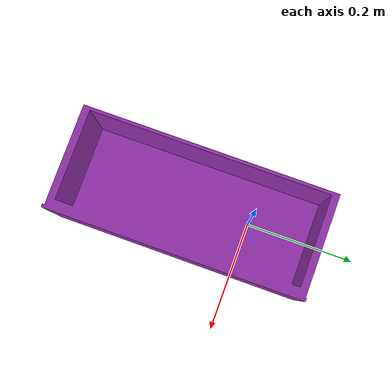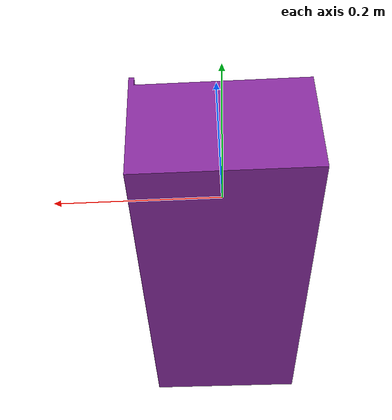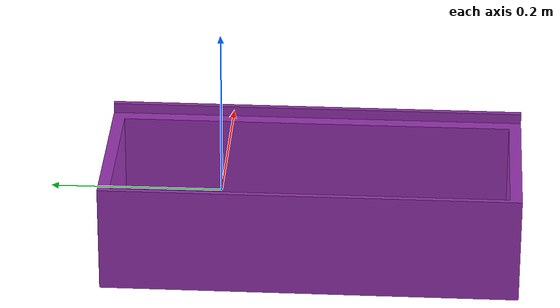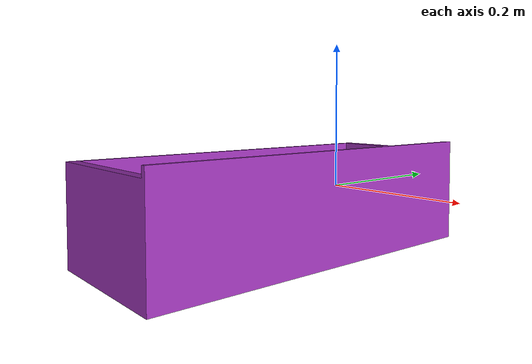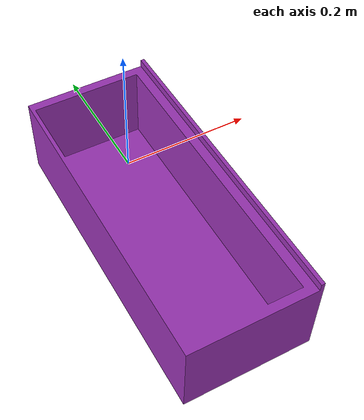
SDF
<?xml version='1.0'?>
<sdf version='1.6'>
  <model name='cajas'>
    <link name='link_0'>
      <pose frame=''>0 0 -0 0 -0 1.57236</pose>
      <inertial>
        <mass>34.992</mass>
        <inertia>
          <ixx>2.3919</ixx>
          <ixy>4.4739E-16</ixy>
          <ixz>-1.5436E-15</ixz>
          <iyy>3.8961</iyy>
          <iyz>-0.13742</iyz>
          <izz>2.2654</izz>
        </inertia>
      </inertial>
      <visual name='visual'>
        <pose frame=''>0 0 0 0 -0 0</pose>
        <geometry>
          <mesh>
            <uri>/home/pt/baxter_ws/src/baxter_simulator/baxter_sim_examples/models/CAJA/meshes/base_link.STL</uri>
            <scale>0.7 0.3 0.4</scale>
          </mesh>
        </geometry>
        <material>
          <lighting>1</lighting>
          <script>
            <uri>file://media/materials/scripts/gazebo.material</uri>
            <name>Gazebo/Purple</name>
          </script>
        </material>
      </visual>
      <collision name='collision'>
        <laser_retro>0</laser_retro>
        <max_contacts>10</max_contacts>
        <pose frame=''>0 0 0 0 -0 0</pose>
        <geometry>
          <mesh>
            <uri>/home/pt/baxter_ws/src/baxter_simulator/baxter_sim_examples/models/CAJA/meshes/base_link.STL</uri>
            <scale>0.7 0.3 0.4</scale>
          </mesh>
        </geometry>
      </collision>
    </link>
    <static>0</static>
    <allow_auto_disable>1</allow_auto_disable>
  </model>
</sdf>
